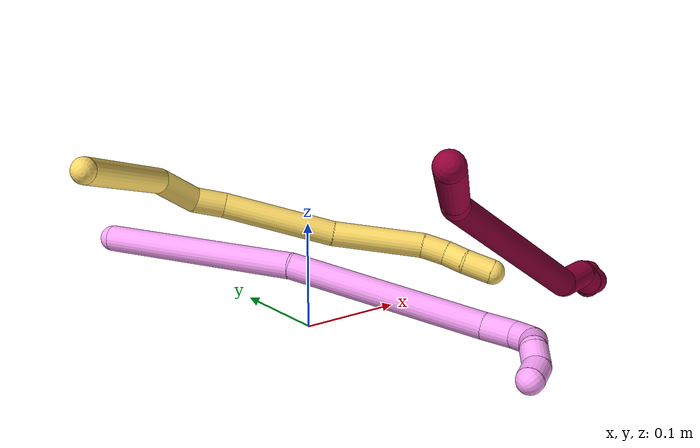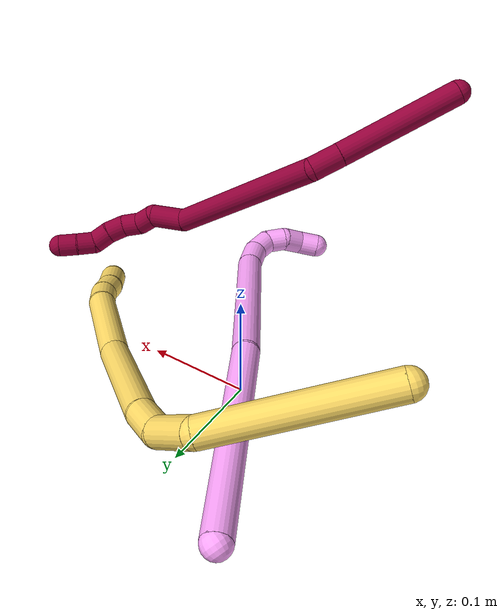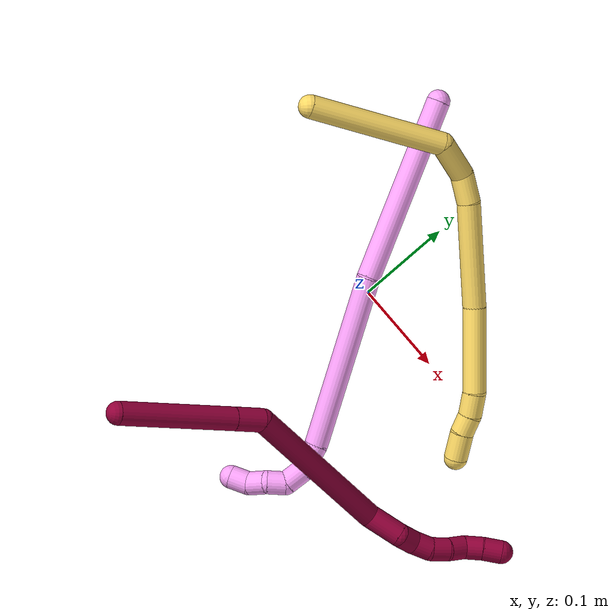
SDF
<sdf version="1.7">
 <world name="default">
  <model name="photoneo_s_sensor">
   <static>1</static>
   <pose>0 0 2 1.57079 1.57079 3.14159</pose>
   <link name="link">
    <inertial><mass>0.1</mass></inertial>
    <sensor name="sensor" type="depth">
     <update_rate>30</update_rate>
     <camera>
      <horizontal_fov>1.22</horizontal_fov>
      <image><width>1920</width><height>1200</height><format>B8G8R8</format></image>
      <clip><near>0.1</near><far>4</far></clip>
      <depth_camera><output>points</output></depth_camera>
     </camera>
     <plugin name="camera_plugin" filename="libgazebo_ros_depth_camera.so">
      <baseline>0.2</baseline>
      <alwaysOn>1</alwaysOn>
      <updateRate>0.0</updateRate>
      <cameraName>camera_ir</cameraName>
      <imageTopicName>/camera/color/image_raw</imageTopicName>
      <cameraInfoTopicName>/camera/color/camera_info</cameraInfoTopicName>
      <depthImageTopicName>/camera/depth/image_raw</depthImageTopicName>
      <depthImageCameraInfoTopicName>/camera/depth/camera_info</depthImageCameraInfoTopicName>
      <pointCloudTopicName>/camera/depth/points</pointCloudTopicName>
      <frameName>fr_optical</frameName>
      <pointCloudCutoff>0.1</pointCloudCutoff>
      <pointCloudCutoffMax>2.0</pointCloudCutoffMax>
      <distortionK1>0</distortionK1>
      <distortionK2>0</distortionK2>
      <distortionK3>0</distortionK3>
      <distortionT1>0</distortionT1>
      <distortionT2>0</distortionT2>
      <CxPrime>0</CxPrime>
      <Cx>0</Cx>
      <Cy>0</Cy>
      <focalLength>0</focalLength>
      <hackBaseline>0</hackBaseline>
     </plugin>
    </sensor>
   </link>
  </model>
  <model name="bin">
   <static>1</static>
   <link name="bottom">
    <collision name="collision-bottom">
     <pose>0 0 -0.01 0 -0 0</pose>
     <geometry><box><size>0.8 0.6 0.02</size></box></geometry>
     <surface>
      <friction><ode><mu>100</mu><mu2>100</mu2></ode></friction>
      <contact><collide_bitmask>65535</collide_bitmask></contact>
     </surface>
    </collision>
   </link>
   <link name="west_wall">
    <collision name="collision-west_wall">
     <pose>-0.41 0 0.1 0 -0 0</pose>
     <geometry><box><size>0.02 0.6 0.2</size></box></geometry>
     <surface>
      <friction><ode><mu>100</mu><mu2>100</mu2></ode></friction>
      <contact><collide_bitmask>65535</collide_bitmask></contact>
     </surface>
    </collision>
   </link>
   <link name="east_wall">
    <collision name="collision-east_wall">
     <pose>0.41 0 0.1 0 -0 0</pose>
     <geometry><box><size>0.02 0.6 0.2</size></box></geometry>
     <surface>
      <friction><ode><mu>100</mu><mu2>100</mu2></ode></friction>
      <contact><collide_bitmask>65535</collide_bitmask></contact>
     </surface>
    </collision>
   </link>
   <link name="south_wall">
    <collision name="collision-south_wall">
     <pose>0 -0.31 0.1 0 -0 0</pose>
     <geometry><box><size>0.8 0.02 0.2</size></box></geometry>
     <surface>
      <friction><ode><mu>100</mu><mu2>100</mu2></ode></friction>
      <contact><collide_bitmask>65535</collide_bitmask></contact>
     </surface>
    </collision>
   </link>
   <link name="north_wall">
    <collision name="collision-north_wall">
     <pose>0 0.31 0.1 0 -0 0</pose>
     <geometry><box><size>0.8 0.02 0.2</size></box></geometry>
     <surface>
      <friction><ode><mu>100</mu><mu2>100</mu2></ode></friction>
      <contact><collide_bitmask>65535</collide_bitmask></contact>
     </surface>
    </collision>
   </link>
  </model>
  <model name="4">
   <static>0</static>
   <link name="4">
    <collision name="collision-cylinder-e_1_1_4">
     <pose>0.025347 -0.076349 0.057695 0.923673 0.258924 0.129421</pose>
     <geometry><cylinder><radius>0.0125</radius><length>0.197992</length></cylinder></geometry>
     <surface>
      <friction><ode><mu>1.16</mu><mu2>1.16</mu2><slip1>0</slip1><slip2>0</slip2></ode></friction>
      <contact><ode><kp>1e+06</kp><kd>1</kd><max_vel>0</max_vel><min_depth>0.001</min_depth></ode></contact>
     </surface>
    </collision>
    <visual name="visual-cylinder-e_1_1_4">
     <pose>0.025347 -0.076349 0.057695 0.923673 0.258924 0.129421</pose>
     <geometry><cylinder><radius>0.0125</radius><length>0.197992</length></cylinder></geometry>
     <material><ambient>1 0.65098 0.996078 1</ambient></material>
    </visual>
    <collision name="collision-cylinder-e_2_4_5">
     <pose>0.091392 -0.221099 0.164892 0.94434 0.449143 0.232262</pose>
     <geometry><cylinder><radius>0.0125</radius><length>0.187463</length></cylinder></geometry>
     <surface>
      <friction><ode><mu>1.16</mu><mu2>1.16</mu2><slip1>0</slip1><slip2>0</slip2></ode></friction>
      <contact><ode><kp>1e+06</kp><kd>1</kd><max_vel>0</max_vel><min_depth>0.001</min_depth></ode></contact>
     </surface>
    </collision>
    <visual name="visual-cylinder-e_2_4_5">
     <pose>0.091392 -0.221099 0.164892 0.94434 0.449143 0.232262</pose>
     <geometry><cylinder><radius>0.0125</radius><length>0.187463</length></cylinder></geometry>
     <material><ambient>1 0.65098 0.996078 1</ambient></material>
    </visual>
    <collision name="collision-cylinder-e_3_5_6">
     <pose>0.136168 -0.302431 0.221766 1.05266 0.267431 0.155992</pose>
     <geometry><cylinder><radius>0.0125</radius><length>0.030865</length></cylinder></geometry>
     <surface>
      <friction><ode><mu>1.16</mu><mu2>1.16</mu2><slip1>0</slip1><slip2>0</slip2></ode></friction>
      <contact><ode><kp>1e+06</kp><kd>1</kd><max_vel>0</max_vel><min_depth>0.001</min_depth></ode></contact>
     </surface>
    </collision>
    <visual name="visual-cylinder-e_3_5_6">
     <pose>0.136168 -0.302431 0.221766 1.05266 0.267431 0.155992</pose>
     <geometry><cylinder><radius>0.0125</radius><length>0.030865</length></cylinder></geometry>
     <material><ambient>1 0.65098 0.996078 1</ambient></material>
    </visual>
    <collision name="collision-cylinder-e_4_6_7">
     <pose>0.139415 -0.326246 0.231461 1.36048 -0.074534 -0.060312</pose>
     <geometry><cylinder><radius>0.0125</radius><length>0.022323</length></cylinder></geometry>
     <surface>
      <friction><ode><mu>1.16</mu><mu2>1.16</mu2><slip1>0</slip1><slip2>0</slip2></ode></friction>
      <contact><ode><kp>1e+06</kp><kd>1</kd><max_vel>0</max_vel><min_depth>0.001</min_depth></ode></contact>
     </surface>
    </collision>
    <visual name="visual-cylinder-e_4_6_7">
     <pose>0.139415 -0.326246 0.231461 1.36048 -0.074534 -0.060312</pose>
     <geometry><cylinder><radius>0.0125</radius><length>0.022323</length></cylinder></geometry>
     <material><ambient>1 0.65098 0.996078 1</ambient></material>
    </visual>
    <collision name="collision-cylinder-e_5_7_8">
     <pose>0.134552 -0.345566 0.22985 2.00728 -0.408737 -0.629168</pose>
     <geometry><cylinder><radius>0.0125</radius><length>0.020286</length></cylinder></geometry>
     <surface>
      <friction><ode><mu>1.16</mu><mu2>1.16</mu2><slip1>0</slip1><slip2>0</slip2></ode></friction>
      <contact><ode><kp>1e+06</kp><kd>1</kd><max_vel>0</max_vel><min_depth>0.001</min_depth></ode></contact>
     </surface>
    </collision>
    <visual name="visual-cylinder-e_5_7_8">
     <pose>0.134552 -0.345566 0.22985 2.00728 -0.408737 -0.629168</pose>
     <geometry><cylinder><radius>0.0125</radius><length>0.020286</length></cylinder></geometry>
     <material><ambient>1 0.65098 0.996078 1</ambient></material>
    </visual>
    <collision name="collision-cylinder-e_6_8_9">
     <pose>0.131345 -0.362984 0.220931 2.07735 0.080102 0.135912</pose>
     <geometry><cylinder><radius>0.0125</radius><length>0.020612</length></cylinder></geometry>
     <surface>
      <friction><ode><mu>1.16</mu><mu2>1.16</mu2><slip1>0</slip1><slip2>0</slip2></ode></friction>
      <contact><ode><kp>1e+06</kp><kd>1</kd><max_vel>0</max_vel><min_depth>0.001</min_depth></ode></contact>
     </surface>
    </collision>
    <visual name="visual-cylinder-e_6_8_9">
     <pose>0.131345 -0.362984 0.220931 2.07735 0.080102 0.135912</pose>
     <geometry><cylinder><radius>0.0125</radius><length>0.020612</length></cylinder></geometry>
     <material><ambient>1 0.65098 0.996078 1</ambient></material>
    </visual>
    <collision name="collision-cylinder-e_7_9_2">
     <pose>0.129298 -0.378761 0.208859 2.37737 -0.284602 -0.684927</pose>
     <geometry><cylinder><radius>0.0125</radius><length>0.020459</length></cylinder></geometry>
     <surface>
      <friction><ode><mu>1.16</mu><mu2>1.16</mu2><slip1>0</slip1><slip2>0</slip2></ode></friction>
      <contact><ode><kp>1e+06</kp><kd>1</kd><max_vel>0</max_vel><min_depth>0.001</min_depth></ode></contact>
     </surface>
    </collision>
    <visual name="visual-cylinder-e_7_9_2">
     <pose>0.129298 -0.378761 0.208859 2.37737 -0.284602 -0.684927</pose>
     <geometry><cylinder><radius>0.0125</radius><length>0.020459</length></cylinder></geometry>
     <material><ambient>1 0.65098 0.996078 1</ambient></material>
    </visual>
    <collision name="collision-sphere-2">
     <pose>0.126426 -0.385554 0.201772 0 -0 0</pose>
     <geometry><sphere><radius>0.0125</radius></sphere></geometry>
     <surface>
      <friction><ode><mu>1.16</mu><mu2>1.16</mu2><slip1>0</slip1><slip2>0</slip2></ode></friction>
      <contact><ode><kp>1e+06</kp><kd>1</kd><max_vel>0</max_vel><min_depth>0.001</min_depth></ode></contact>
     </surface>
    </collision>
    <visual name="visual-sphere-2">
     <pose>0.126426 -0.385554 0.201772 0 -0 0</pose>
     <geometry><sphere><radius>0.0125</radius></sphere></geometry>
     <material><ambient>1 0.65098 0.996078 1</ambient></material>
    </visual>
    <collision name="collision-sphere-9">
     <pose>0.13217 -0.371967 0.215947 0 -0 0</pose>
     <geometry><sphere><radius>0.0125</radius></sphere></geometry>
     <surface>
      <friction><ode><mu>1.16</mu><mu2>1.16</mu2><slip1>0</slip1><slip2>0</slip2></ode></friction>
      <contact><ode><kp>1e+06</kp><kd>1</kd><max_vel>0</max_vel><min_depth>0.001</min_depth></ode></contact>
     </surface>
    </collision>
    <visual name="visual-sphere-9">
     <pose>0.13217 -0.371967 0.215947 0 -0 0</pose>
     <geometry><sphere><radius>0.0125</radius></sphere></geometry>
     <material><ambient>1 0.65098 0.996078 1</ambient></material>
    </visual>
    <collision name="collision-sphere-4">
     <pose>0.050694 -0.152697 0.115389 0 -0 0</pose>
     <geometry><sphere><radius>0.0125</radius></sphere></geometry>
     <surface>
      <friction><ode><mu>1.16</mu><mu2>1.16</mu2><slip1>0</slip1><slip2>0</slip2></ode></friction>
      <contact><ode><kp>1e+06</kp><kd>1</kd><max_vel>0</max_vel><min_depth>0.001</min_depth></ode></contact>
     </surface>
    </collision>
    <visual name="visual-sphere-4">
     <pose>0.050694 -0.152697 0.115389 0 -0 0</pose>
     <geometry><sphere><radius>0.0125</radius></sphere></geometry>
     <material><ambient>1 0.65098 0.996078 1</ambient></material>
    </visual>
    <collision name="collision-sphere-1">
     <geometry><sphere><radius>0.0125</radius></sphere></geometry>
     <surface>
      <friction><ode><mu>1.16</mu><mu2>1.16</mu2><slip1>0</slip1><slip2>0</slip2></ode></friction>
      <contact><ode><kp>1e+06</kp><kd>1</kd><max_vel>0</max_vel><min_depth>0.001</min_depth></ode></contact>
     </surface>
    </collision>
    <visual name="visual-sphere-1">
     <geometry><sphere><radius>0.0125</radius></sphere></geometry>
     <material><ambient>1 0.65098 0.996078 1</ambient></material>
    </visual>
    <collision name="collision-sphere-8">
     <pose>0.130521 -0.354001 0.225915 0 -0 0</pose>
     <geometry><sphere><radius>0.0125</radius></sphere></geometry>
     <surface>
      <friction><ode><mu>1.16</mu><mu2>1.16</mu2><slip1>0</slip1><slip2>0</slip2></ode></friction>
      <contact><ode><kp>1e+06</kp><kd>1</kd><max_vel>0</max_vel><min_depth>0.001</min_depth></ode></contact>
     </surface>
    </collision>
    <visual name="visual-sphere-8">
     <pose>0.130521 -0.354001 0.225915 0 -0 0</pose>
     <geometry><sphere><radius>0.0125</radius></sphere></geometry>
     <material><ambient>1 0.65098 0.996078 1</ambient></material>
    </visual>
    <collision name="collision-sphere-5">
     <pose>0.13209 -0.289501 0.214395 0 -0 0</pose>
     <geometry><sphere><radius>0.0125</radius></sphere></geometry>
     <surface>
      <friction><ode><mu>1.16</mu><mu2>1.16</mu2><slip1>0</slip1><slip2>0</slip2></ode></friction>
      <contact><ode><kp>1e+06</kp><kd>1</kd><max_vel>0</max_vel><min_depth>0.001</min_depth></ode></contact>
     </surface>
    </collision>
    <visual name="visual-sphere-5">
     <pose>0.13209 -0.289501 0.214395 0 -0 0</pose>
     <geometry><sphere><radius>0.0125</radius></sphere></geometry>
     <material><ambient>1 0.65098 0.996078 1</ambient></material>
    </visual>
    <collision name="collision-sphere-6">
     <pose>0.140246 -0.315361 0.229137 0 -0 0</pose>
     <geometry><sphere><radius>0.0125</radius></sphere></geometry>
     <surface>
      <friction><ode><mu>1.16</mu><mu2>1.16</mu2><slip1>0</slip1><slip2>0</slip2></ode></friction>
      <contact><ode><kp>1e+06</kp><kd>1</kd><max_vel>0</max_vel><min_depth>0.001</min_depth></ode></contact>
     </surface>
    </collision>
    <visual name="visual-sphere-6">
     <pose>0.140246 -0.315361 0.229137 0 -0 0</pose>
     <geometry><sphere><radius>0.0125</radius></sphere></geometry>
     <material><ambient>1 0.65098 0.996078 1</ambient></material>
    </visual>
    <collision name="collision-sphere-7">
     <pose>0.138584 -0.337131 0.233785 0 -0 0</pose>
     <geometry><sphere><radius>0.0125</radius></sphere></geometry>
     <surface>
      <friction><ode><mu>1.16</mu><mu2>1.16</mu2><slip1>0</slip1><slip2>0</slip2></ode></friction>
      <contact><ode><kp>1e+06</kp><kd>1</kd><max_vel>0</max_vel><min_depth>0.001</min_depth></ode></contact>
     </surface>
    </collision>
    <visual name="visual-sphere-7">
     <pose>0.138584 -0.337131 0.233785 0 -0 0</pose>
     <geometry><sphere><radius>0.0125</radius></sphere></geometry>
     <material><ambient>1 0.65098 0.996078 1</ambient></material>
    </visual>
    <inertial>
     <pose>0.075096 -0.190845 0.135671 0 -0 0</pose>
     <mass>0.5</mass>
     <inertia>
      <ixx>0.00133</ixx>
      <ixy>0</ixy>
      <ixz>0</ixz>
      <iyy>0.000938</iyy>
      <iyz>0</iyz>
      <izz>0.000526</izz>
     </inertia>
    </inertial>
   </link>
   <pose>-0.103914 0.185163 0.060291 0.221018 1.01519 -0.010257</pose>
  </model>
  <model name="5">
   <static>0</static>
   <link name="5">
    <collision name="collision-cylinder-e_1_1_4">
     <pose>0.026933 0.001109 0.068551 -0.016182 0.374317 -0.003065</pose>
     <geometry><cylinder><radius>0.0125</radius><length>0.147321</length></cylinder></geometry>
     <surface>
      <friction><ode><mu>1.16</mu><mu2>1.16</mu2><slip1>0</slip1><slip2>0</slip2></ode></friction>
      <contact><ode><kp>1e+06</kp><kd>1</kd><max_vel>0</max_vel><min_depth>0.001</min_depth></ode></contact>
     </surface>
    </collision>
    <visual name="visual-cylinder-e_1_1_4">
     <pose>0.026933 0.001109 0.068551 -0.016182 0.374317 -0.003065</pose>
     <geometry><cylinder><radius>0.0125</radius><length>0.147321</length></cylinder></geometry>
     <material><ambient>1 0.858824 0.4 1</ambient></material>
    </visual>
    <collision name="collision-cylinder-e_2_4_5">
     <pose>0.073186 0.003544 0.147608 -0.125513 1.06939 -0.074398</pose>
     <geometry><cylinder><radius>0.0125</radius><length>0.044063</length></cylinder></geometry>
     <surface>
      <friction><ode><mu>1.16</mu><mu2>1.16</mu2><slip1>0</slip1><slip2>0</slip2></ode></friction>
      <contact><ode><kp>1e+06</kp><kd>1</kd><max_vel>0</max_vel><min_depth>0.001</min_depth></ode></contact>
     </surface>
    </collision>
    <visual name="visual-cylinder-e_2_4_5">
     <pose>0.073186 0.003544 0.147608 -0.125513 1.06939 -0.074398</pose>
     <geometry><cylinder><radius>0.0125</radius><length>0.044063</length></cylinder></geometry>
     <material><ambient>1 0.858824 0.4 1</ambient></material>
    </visual>
    <collision name="collision-cylinder-e_3_5_6">
     <pose>0.106782 7.9e-05 0.16116 1.00463 1.19233 0.713543</pose>
     <geometry><cylinder><radius>0.0125</radius><length>0.030729</length></cylinder></geometry>
     <surface>
      <friction><ode><mu>1.16</mu><mu2>1.16</mu2><slip1>0</slip1><slip2>0</slip2></ode></friction>
      <contact><ode><kp>1e+06</kp><kd>1</kd><max_vel>0</max_vel><min_depth>0.001</min_depth></ode></contact>
     </surface>
    </collision>
    <visual name="visual-cylinder-e_3_5_6">
     <pose>0.106782 7.9e-05 0.16116 1.00463 1.19233 0.713543</pose>
     <geometry><cylinder><radius>0.0125</radius><length>0.030729</length></cylinder></geometry>
     <material><ambient>1 0.858824 0.4 1</ambient></material>
    </visual>
    <collision name="collision-cylinder-e_4_6_7">
     <pose>0.17513 -0.020106 0.16565 1.47718 1.29228 1.20341</pose>
     <geometry><cylinder><radius>0.0125</radius><length>0.112476</length></cylinder></geometry>
     <surface>
      <friction><ode><mu>1.16</mu><mu2>1.16</mu2><slip1>0</slip1><slip2>0</slip2></ode></friction>
      <contact><ode><kp>1e+06</kp><kd>1</kd><max_vel>0</max_vel><min_depth>0.001</min_depth></ode></contact>
     </surface>
    </collision>
    <visual name="visual-cylinder-e_4_6_7">
     <pose>0.17513 -0.020106 0.16565 1.47718 1.29228 1.20341</pose>
     <geometry><cylinder><radius>0.0125</radius><length>0.112476</length></cylinder></geometry>
     <material><ambient>1 0.858824 0.4 1</ambient></material>
    </visual>
    <collision name="collision-cylinder-e_5_7_8">
     <pose>0.270407 -0.053818 0.164914 1.68934 1.14986 1.26076</pose>
     <geometry><cylinder><radius>0.0125</radius><length>0.090294</length></cylinder></geometry>
     <surface>
      <friction><ode><mu>1.16</mu><mu2>1.16</mu2><slip1>0</slip1><slip2>0</slip2></ode></friction>
      <contact><ode><kp>1e+06</kp><kd>1</kd><max_vel>0</max_vel><min_depth>0.001</min_depth></ode></contact>
     </surface>
    </collision>
    <visual name="visual-cylinder-e_5_7_8">
     <pose>0.270407 -0.053818 0.164914 1.68934 1.14986 1.26076</pose>
     <geometry><cylinder><radius>0.0125</radius><length>0.090294</length></cylinder></geometry>
     <material><ambient>1 0.858824 0.4 1</ambient></material>
    </visual>
    <collision name="collision-cylinder-e_6_8_9">
     <pose>0.323563 -0.075235 0.160115 2.27215 1.24353 1.99165</pose>
     <geometry><cylinder><radius>0.0125</radius><length>0.025239</length></cylinder></geometry>
     <surface>
      <friction><ode><mu>1.16</mu><mu2>1.16</mu2><slip1>0</slip1><slip2>0</slip2></ode></friction>
      <contact><ode><kp>1e+06</kp><kd>1</kd><max_vel>0</max_vel><min_depth>0.001</min_depth></ode></contact>
     </surface>
    </collision>
    <visual name="visual-cylinder-e_6_8_9">
     <pose>0.323563 -0.075235 0.160115 2.27215 1.24353 1.99165</pose>
     <geometry><cylinder><radius>0.0125</radius><length>0.025239</length></cylinder></geometry>
     <material><ambient>1 0.858824 0.4 1</ambient></material>
    </visual>
    <collision name="collision-cylinder-e_7_9_10">
     <pose>0.34485 -0.080076 0.15312 2.76282 1.10349 2.53779</pose>
     <geometry><cylinder><radius>0.0125</radius><length>0.020917</length></cylinder></geometry>
     <surface>
      <friction><ode><mu>1.16</mu><mu2>1.16</mu2><slip1>0</slip1><slip2>0</slip2></ode></friction>
      <contact><ode><kp>1e+06</kp><kd>1</kd><max_vel>0</max_vel><min_depth>0.001</min_depth></ode></contact>
     </surface>
    </collision>
    <visual name="visual-cylinder-e_7_9_10">
     <pose>0.34485 -0.080076 0.15312 2.76282 1.10349 2.53779</pose>
     <geometry><cylinder><radius>0.0125</radius><length>0.020917</length></cylinder></geometry>
     <material><ambient>1 0.858824 0.4 1</ambient></material>
    </visual>
    <collision name="collision-cylinder-e_8_10_2">
     <pose>0.367877 -0.084843 0.145117 2.44629 1.23876 2.20113</pose>
     <geometry><cylinder><radius>0.0125</radius><length>0.028961</length></cylinder></geometry>
     <surface>
      <friction><ode><mu>1.16</mu><mu2>1.16</mu2><slip1>0</slip1><slip2>0</slip2></ode></friction>
      <contact><ode><kp>1e+06</kp><kd>1</kd><max_vel>0</max_vel><min_depth>0.001</min_depth></ode></contact>
     </surface>
    </collision>
    <visual name="visual-cylinder-e_8_10_2">
     <pose>0.367877 -0.084843 0.145117 2.44629 1.23876 2.20113</pose>
     <geometry><cylinder><radius>0.0125</radius><length>0.028961</length></cylinder></geometry>
     <material><ambient>1 0.858824 0.4 1</ambient></material>
    </visual>
    <collision name="collision-sphere-2">
     <pose>0.381566 -0.087866 0.141493 0 -0 0</pose>
     <geometry><sphere><radius>0.0125</radius></sphere></geometry>
     <surface>
      <friction><ode><mu>1.16</mu><mu2>1.16</mu2><slip1>0</slip1><slip2>0</slip2></ode></friction>
      <contact><ode><kp>1e+06</kp><kd>1</kd><max_vel>0</max_vel><min_depth>0.001</min_depth></ode></contact>
     </surface>
    </collision>
    <visual name="visual-sphere-2">
     <pose>0.381566 -0.087866 0.141493 0 -0 0</pose>
     <geometry><sphere><radius>0.0125</radius></sphere></geometry>
     <material><ambient>1 0.858824 0.4 1</ambient></material>
    </visual>
    <collision name="collision-sphere-10">
     <pose>0.354187 -0.081819 0.148742 0 -0 0</pose>
     <geometry><sphere><radius>0.0125</radius></sphere></geometry>
     <surface>
      <friction><ode><mu>1.16</mu><mu2>1.16</mu2><slip1>0</slip1><slip2>0</slip2></ode></friction>
      <contact><ode><kp>1e+06</kp><kd>1</kd><max_vel>0</max_vel><min_depth>0.001</min_depth></ode></contact>
     </surface>
    </collision>
    <visual name="visual-sphere-10">
     <pose>0.354187 -0.081819 0.148742 0 -0 0</pose>
     <geometry><sphere><radius>0.0125</radius></sphere></geometry>
     <material><ambient>1 0.858824 0.4 1</ambient></material>
    </visual>
    <collision name="collision-sphere-9">
     <pose>0.335512 -0.078334 0.157497 0 -0 0</pose>
     <geometry><sphere><radius>0.0125</radius></sphere></geometry>
     <surface>
      <friction><ode><mu>1.16</mu><mu2>1.16</mu2><slip1>0</slip1><slip2>0</slip2></ode></friction>
      <contact><ode><kp>1e+06</kp><kd>1</kd><max_vel>0</max_vel><min_depth>0.001</min_depth></ode></contact>
     </surface>
    </collision>
    <visual name="visual-sphere-9">
     <pose>0.335512 -0.078334 0.157497 0 -0 0</pose>
     <geometry><sphere><radius>0.0125</radius></sphere></geometry>
     <material><ambient>1 0.858824 0.4 1</ambient></material>
    </visual>
    <collision name="collision-sphere-4">
     <pose>0.053866 0.002219 0.137102 0 -0 0</pose>
     <geometry><sphere><radius>0.0125</radius></sphere></geometry>
     <surface>
      <friction><ode><mu>1.16</mu><mu2>1.16</mu2><slip1>0</slip1><slip2>0</slip2></ode></friction>
      <contact><ode><kp>1e+06</kp><kd>1</kd><max_vel>0</max_vel><min_depth>0.001</min_depth></ode></contact>
     </surface>
    </collision>
    <visual name="visual-sphere-4">
     <pose>0.053866 0.002219 0.137102 0 -0 0</pose>
     <geometry><sphere><radius>0.0125</radius></sphere></geometry>
     <material><ambient>1 0.858824 0.4 1</ambient></material>
    </visual>
    <collision name="collision-sphere-1">
     <geometry><sphere><radius>0.0125</radius></sphere></geometry>
     <surface>
      <friction><ode><mu>1.16</mu><mu2>1.16</mu2><slip1>0</slip1><slip2>0</slip2></ode></friction>
      <contact><ode><kp>1e+06</kp><kd>1</kd><max_vel>0</max_vel><min_depth>0.001</min_depth></ode></contact>
     </surface>
    </collision>
    <visual name="visual-sphere-1">
     <geometry><sphere><radius>0.0125</radius></sphere></geometry>
     <material><ambient>1 0.858824 0.4 1</ambient></material>
    </visual>
    <collision name="collision-sphere-8">
     <pose>0.311613 -0.072136 0.162732 0 -0 0</pose>
     <geometry><sphere><radius>0.0125</radius></sphere></geometry>
     <surface>
      <friction><ode><mu>1.16</mu><mu2>1.16</mu2><slip1>0</slip1><slip2>0</slip2></ode></friction>
      <contact><ode><kp>1e+06</kp><kd>1</kd><max_vel>0</max_vel><min_depth>0.001</min_depth></ode></contact>
     </surface>
    </collision>
    <visual name="visual-sphere-8">
     <pose>0.311613 -0.072136 0.162732 0 -0 0</pose>
     <geometry><sphere><radius>0.0125</radius></sphere></geometry>
     <material><ambient>1 0.858824 0.4 1</ambient></material>
    </visual>
    <collision name="collision-sphere-5">
     <pose>0.092505 0.00487 0.158115 0 -0 0</pose>
     <geometry><sphere><radius>0.0125</radius></sphere></geometry>
     <surface>
      <friction><ode><mu>1.16</mu><mu2>1.16</mu2><slip1>0</slip1><slip2>0</slip2></ode></friction>
      <contact><ode><kp>1e+06</kp><kd>1</kd><max_vel>0</max_vel><min_depth>0.001</min_depth></ode></contact>
     </surface>
    </collision>
    <visual name="visual-sphere-5">
     <pose>0.092505 0.00487 0.158115 0 -0 0</pose>
     <geometry><sphere><radius>0.0125</radius></sphere></geometry>
     <material><ambient>1 0.858824 0.4 1</ambient></material>
    </visual>
    <collision name="collision-sphere-6">
     <pose>0.12106 -0.004712 0.164205 0 -0 0</pose>
     <geometry><sphere><radius>0.0125</radius></sphere></geometry>
     <surface>
      <friction><ode><mu>1.16</mu><mu2>1.16</mu2><slip1>0</slip1><slip2>0</slip2></ode></friction>
      <contact><ode><kp>1e+06</kp><kd>1</kd><max_vel>0</max_vel><min_depth>0.001</min_depth></ode></contact>
     </surface>
    </collision>
    <visual name="visual-sphere-6">
     <pose>0.12106 -0.004712 0.164205 0 -0 0</pose>
     <geometry><sphere><radius>0.0125</radius></sphere></geometry>
     <material><ambient>1 0.858824 0.4 1</ambient></material>
    </visual>
    <collision name="collision-sphere-7">
     <pose>0.229201 -0.035499 0.167096 0 -0 0</pose>
     <geometry><sphere><radius>0.0125</radius></sphere></geometry>
     <surface>
      <friction><ode><mu>1.16</mu><mu2>1.16</mu2><slip1>0</slip1><slip2>0</slip2></ode></friction>
      <contact><ode><kp>1e+06</kp><kd>1</kd><max_vel>0</max_vel><min_depth>0.001</min_depth></ode></contact>
     </surface>
    </collision>
    <visual name="visual-sphere-7">
     <pose>0.229201 -0.035499 0.167096 0 -0 0</pose>
     <geometry><sphere><radius>0.0125</radius></sphere></geometry>
     <material><ambient>1 0.858824 0.4 1</ambient></material>
    </visual>
    <inertial>
     <pose>0.161244 -0.02566 0.133049 0 -0 0</pose>
     <mass>0.5</mass>
     <inertia>
      <ixx>0.000366</ixx>
      <ixy>0</ixy>
      <ixz>0</ixz>
      <iyy>0.00051</iyy>
      <iyz>0</iyz>
      <izz>-0.000226</izz>
     </inertia>
    </inertial>
   </link>
   <pose>-0.18267 0.076684 0.161582 -1.68526 0.538202 -0.702655</pose>
  </model>
  <model name="8">
   <static>0</static>
   <link name="8">
    <collision name="collision-cylinder-e_1_1_4">
     <pose>4.4e-05 0.002901 -0.063894 -3.09622 0.00069 -0.030401</pose>
     <geometry><cylinder><radius>0.0125</radius><length>0.127921</length></cylinder></geometry>
     <surface>
      <friction><ode><mu>1.16</mu><mu2>1.16</mu2><slip1>0</slip1><slip2>0</slip2></ode></friction>
      <contact><ode><kp>1e+06</kp><kd>1</kd><max_vel>0</max_vel><min_depth>0.001</min_depth></ode></contact>
     </surface>
    </collision>
    <visual name="visual-cylinder-e_1_1_4">
     <pose>4.4e-05 0.002901 -0.063894 -3.09622 0.00069 -0.030401</pose>
     <geometry><cylinder><radius>0.0125</radius><length>0.127921</length></cylinder></geometry>
     <material><ambient>0.584314 0 0.227451 1</ambient></material>
    </visual>
    <collision name="collision-cylinder-e_2_4_5">
     <pose>7e-06 0.006684 -0.143528 -3.08558 -0.005155 0.183487</pose>
     <geometry><cylinder><radius>0.0125</radius><length>0.031527</length></cylinder></geometry>
     <surface>
      <friction><ode><mu>1.16</mu><mu2>1.16</mu2><slip1>0</slip1><slip2>0</slip2></ode></friction>
      <contact><ode><kp>1e+06</kp><kd>1</kd><max_vel>0</max_vel><min_depth>0.001</min_depth></ode></contact>
     </surface>
    </collision>
    <visual name="visual-cylinder-e_2_4_5">
     <pose>7e-06 0.006684 -0.143528 -3.08558 -0.005155 0.183487</pose>
     <geometry><cylinder><radius>0.0125</radius><length>0.031527</length></cylinder></geometry>
     <material><ambient>0.584314 0 0.227451 1</ambient></material>
    </visual>
    <collision name="collision-cylinder-e_3_5_6">
     <pose>0.047113 0.03343 -0.232624 -2.80264 0.545292 -2.04321</pose>
     <geometry><cylinder><radius>0.0125</radius><length>0.181954</length></cylinder></geometry>
     <surface>
      <friction><ode><mu>1.16</mu><mu2>1.16</mu2><slip1>0</slip1><slip2>0</slip2></ode></friction>
      <contact><ode><kp>1e+06</kp><kd>1</kd><max_vel>0</max_vel><min_depth>0.001</min_depth></ode></contact>
     </surface>
    </collision>
    <visual name="visual-cylinder-e_3_5_6">
     <pose>0.047113 0.03343 -0.232624 -2.80264 0.545292 -2.04321</pose>
     <geometry><cylinder><radius>0.0125</radius><length>0.181954</length></cylinder></geometry>
     <material><ambient>0.584314 0 0.227451 1</ambient></material>
    </visual>
    <collision name="collision-cylinder-e_4_6_7">
     <pose>0.095268 0.071308 -0.320324 -2.44429 0.051707 -0.14204</pose>
     <geometry><cylinder><radius>0.0125</radius><length>0.03747</length></cylinder></geometry>
     <surface>
      <friction><ode><mu>1.16</mu><mu2>1.16</mu2><slip1>0</slip1><slip2>0</slip2></ode></friction>
      <contact><ode><kp>1e+06</kp><kd>1</kd><max_vel>0</max_vel><min_depth>0.001</min_depth></ode></contact>
     </surface>
    </collision>
    <visual name="visual-cylinder-e_4_6_7">
     <pose>0.095268 0.071308 -0.320324 -2.44429 0.051707 -0.14204</pose>
     <geometry><cylinder><radius>0.0125</radius><length>0.03747</length></cylinder></geometry>
     <material><ambient>0.584314 0 0.227451 1</ambient></material>
    </visual>
    <collision name="collision-cylinder-e_5_7_8">
     <pose>0.100649 0.084813 -0.34409 -2.98471 0.433222 -2.45549</pose>
     <geometry><cylinder><radius>0.0125</radius><length>0.021021</length></cylinder></geometry>
     <surface>
      <friction><ode><mu>1.16</mu><mu2>1.16</mu2><slip1>0</slip1><slip2>0</slip2></ode></friction>
      <contact><ode><kp>1e+06</kp><kd>1</kd><max_vel>0</max_vel><min_depth>0.001</min_depth></ode></contact>
     </surface>
    </collision>
    <visual name="visual-cylinder-e_5_7_8">
     <pose>0.100649 0.084813 -0.34409 -2.98471 0.433222 -2.45549</pose>
     <geometry><cylinder><radius>0.0125</radius><length>0.021021</length></cylinder></geometry>
     <material><ambient>0.584314 0 0.227451 1</ambient></material>
    </visual>
    <collision name="collision-cylinder-e_6_8_9">
     <pose>0.105768 0.090301 -0.362666 -2.72981 0.070645 -0.335222</pose>
     <geometry><cylinder><radius>0.0125</radius><length>0.020028</length></cylinder></geometry>
     <surface>
      <friction><ode><mu>1.16</mu><mu2>1.16</mu2><slip1>0</slip1><slip2>0</slip2></ode></friction>
      <contact><ode><kp>1e+06</kp><kd>1</kd><max_vel>0</max_vel><min_depth>0.001</min_depth></ode></contact>
     </surface>
    </collision>
    <visual name="visual-cylinder-e_6_8_9">
     <pose>0.105768 0.090301 -0.362666 -2.72981 0.070645 -0.335222</pose>
     <geometry><cylinder><radius>0.0125</radius><length>0.020028</length></cylinder></geometry>
     <material><ambient>0.584314 0 0.227451 1</ambient></material>
    </visual>
    <collision name="collision-cylinder-e_7_9_10">
     <pose>0.105624 0.0953 -0.381741 -3.04106 -0.085065 1.40428</pose>
     <geometry><cylinder><radius>0.0125</radius><length>0.020016</length></cylinder></geometry>
     <surface>
      <friction><ode><mu>1.16</mu><mu2>1.16</mu2><slip1>0</slip1><slip2>0</slip2></ode></friction>
      <contact><ode><kp>1e+06</kp><kd>1</kd><max_vel>0</max_vel><min_depth>0.001</min_depth></ode></contact>
     </surface>
    </collision>
    <visual name="visual-cylinder-e_7_9_10">
     <pose>0.105624 0.0953 -0.381741 -3.04106 -0.085065 1.40428</pose>
     <geometry><cylinder><radius>0.0125</radius><length>0.020016</length></cylinder></geometry>
     <material><ambient>0.584314 0 0.227451 1</ambient></material>
    </visual>
    <collision name="collision-cylinder-e_8_10_11">
     <pose>0.104368 0.095267 -0.401607 3.03804 -0.040592 -0.746639</pose>
     <geometry><cylinder><radius>0.0125</radius><length>0.020012</length></cylinder></geometry>
     <surface>
      <friction><ode><mu>1.16</mu><mu2>1.16</mu2><slip1>0</slip1><slip2>0</slip2></ode></friction>
      <contact><ode><kp>1e+06</kp><kd>1</kd><max_vel>0</max_vel><min_depth>0.001</min_depth></ode></contact>
     </surface>
    </collision>
    <visual name="visual-cylinder-e_8_10_11">
     <pose>0.104368 0.095267 -0.401607 3.03804 -0.040592 -0.746639</pose>
     <geometry><cylinder><radius>0.0125</radius><length>0.020012</length></cylinder></geometry>
     <material><ambient>0.584314 0 0.227451 1</ambient></material>
    </visual>
    <collision name="collision-cylinder-e_9_11_12">
     <pose>0.100726 0.09761 -0.420405 -2.77723 -0.329054 1.467</pose>
     <geometry><cylinder><radius>0.0125</radius><length>0.020025</length></cylinder></geometry>
     <surface>
      <friction><ode><mu>1.16</mu><mu2>1.16</mu2><slip1>0</slip1><slip2>0</slip2></ode></friction>
      <contact><ode><kp>1e+06</kp><kd>1</kd><max_vel>0</max_vel><min_depth>0.001</min_depth></ode></contact>
     </surface>
    </collision>
    <visual name="visual-cylinder-e_9_11_12">
     <pose>0.100726 0.09761 -0.420405 -2.77723 -0.329054 1.467</pose>
     <geometry><cylinder><radius>0.0125</radius><length>0.020025</length></cylinder></geometry>
     <material><ambient>0.584314 0 0.227451 1</ambient></material>
    </visual>
    <collision name="collision-cylinder-e_10_12_2">
     <pose>0.095407 0.104899 -0.438236 -2.73061 -0.20966 0.934958</pose>
     <geometry><cylinder><radius>0.0125</radius><length>0.020025</length></cylinder></geometry>
     <surface>
      <friction><ode><mu>1.16</mu><mu2>1.16</mu2><slip1>0</slip1><slip2>0</slip2></ode></friction>
      <contact><ode><kp>1e+06</kp><kd>1</kd><max_vel>0</max_vel><min_depth>0.001</min_depth></ode></contact>
     </surface>
    </collision>
    <visual name="visual-cylinder-e_10_12_2">
     <pose>0.095407 0.104899 -0.438236 -2.73061 -0.20966 0.934958</pose>
     <geometry><cylinder><radius>0.0125</radius><length>0.020025</length></cylinder></geometry>
     <material><ambient>0.584314 0 0.227451 1</ambient></material>
    </visual>
    <collision name="collision-sphere-2">
     <pose>0.093323 0.108812 -0.447214 0 -0 0</pose>
     <geometry><sphere><radius>0.0125</radius></sphere></geometry>
     <surface>
      <friction><ode><mu>1.16</mu><mu2>1.16</mu2><slip1>0</slip1><slip2>0</slip2></ode></friction>
      <contact><ode><kp>1e+06</kp><kd>1</kd><max_vel>0</max_vel><min_depth>0.001</min_depth></ode></contact>
     </surface>
    </collision>
    <visual name="visual-sphere-2">
     <pose>0.093323 0.108812 -0.447214 0 -0 0</pose>
     <geometry><sphere><radius>0.0125</radius></sphere></geometry>
     <material><ambient>0.584314 0 0.227451 1</ambient></material>
    </visual>
    <collision name="collision-sphere-12">
     <pose>0.097491 0.100987 -0.429258 0 -0 0</pose>
     <geometry><sphere><radius>0.0125</radius></sphere></geometry>
     <surface>
      <friction><ode><mu>1.16</mu><mu2>1.16</mu2><slip1>0</slip1><slip2>0</slip2></ode></friction>
      <contact><ode><kp>1e+06</kp><kd>1</kd><max_vel>0</max_vel><min_depth>0.001</min_depth></ode></contact>
     </surface>
    </collision>
    <visual name="visual-sphere-12">
     <pose>0.097491 0.100987 -0.429258 0 -0 0</pose>
     <geometry><sphere><radius>0.0125</radius></sphere></geometry>
     <material><ambient>0.584314 0 0.227451 1</ambient></material>
    </visual>
    <collision name="collision-sphere-11">
     <pose>0.103962 0.094234 -0.411551 0 -0 0</pose>
     <geometry><sphere><radius>0.0125</radius></sphere></geometry>
     <surface>
      <friction><ode><mu>1.16</mu><mu2>1.16</mu2><slip1>0</slip1><slip2>0</slip2></ode></friction>
      <contact><ode><kp>1e+06</kp><kd>1</kd><max_vel>0</max_vel><min_depth>0.001</min_depth></ode></contact>
     </surface>
    </collision>
    <visual name="visual-sphere-11">
     <pose>0.103962 0.094234 -0.411551 0 -0 0</pose>
     <geometry><sphere><radius>0.0125</radius></sphere></geometry>
     <material><ambient>0.584314 0 0.227451 1</ambient></material>
    </visual>
    <collision name="collision-sphere-10">
     <pose>0.104774 0.096301 -0.391663 0 -0 0</pose>
     <geometry><sphere><radius>0.0125</radius></sphere></geometry>
     <surface>
      <friction><ode><mu>1.16</mu><mu2>1.16</mu2><slip1>0</slip1><slip2>0</slip2></ode></friction>
      <contact><ode><kp>1e+06</kp><kd>1</kd><max_vel>0</max_vel><min_depth>0.001</min_depth></ode></contact>
     </surface>
    </collision>
    <visual name="visual-sphere-10">
     <pose>0.104774 0.096301 -0.391663 0 -0 0</pose>
     <geometry><sphere><radius>0.0125</radius></sphere></geometry>
     <material><ambient>0.584314 0 0.227451 1</ambient></material>
    </visual>
    <collision name="collision-sphere-9">
     <pose>0.106475 0.094299 -0.37182 0 -0 0</pose>
     <geometry><sphere><radius>0.0125</radius></sphere></geometry>
     <surface>
      <friction><ode><mu>1.16</mu><mu2>1.16</mu2><slip1>0</slip1><slip2>0</slip2></ode></friction>
      <contact><ode><kp>1e+06</kp><kd>1</kd><max_vel>0</max_vel><min_depth>0.001</min_depth></ode></contact>
     </surface>
    </collision>
    <visual name="visual-sphere-9">
     <pose>0.106475 0.094299 -0.37182 0 -0 0</pose>
     <geometry><sphere><radius>0.0125</radius></sphere></geometry>
     <material><ambient>0.584314 0 0.227451 1</ambient></material>
    </visual>
    <collision name="collision-sphere-4">
     <pose>8.8e-05 0.005802 -0.127789 0 -0 0</pose>
     <geometry><sphere><radius>0.0125</radius></sphere></geometry>
     <surface>
      <friction><ode><mu>1.16</mu><mu2>1.16</mu2><slip1>0</slip1><slip2>0</slip2></ode></friction>
      <contact><ode><kp>1e+06</kp><kd>1</kd><max_vel>0</max_vel><min_depth>0.001</min_depth></ode></contact>
     </surface>
    </collision>
    <visual name="visual-sphere-4">
     <pose>8.8e-05 0.005802 -0.127789 0 -0 0</pose>
     <geometry><sphere><radius>0.0125</radius></sphere></geometry>
     <material><ambient>0.584314 0 0.227451 1</ambient></material>
    </visual>
    <collision name="collision-sphere-1">
     <geometry><sphere><radius>0.0125</radius></sphere></geometry>
     <surface>
      <friction><ode><mu>1.16</mu><mu2>1.16</mu2><slip1>0</slip1><slip2>0</slip2></ode></friction>
      <contact><ode><kp>1e+06</kp><kd>1</kd><max_vel>0</max_vel><min_depth>0.001</min_depth></ode></contact>
     </surface>
    </collision>
    <visual name="visual-sphere-1">
     <geometry><sphere><radius>0.0125</radius></sphere></geometry>
     <material><ambient>0.584314 0 0.227451 1</ambient></material>
    </visual>
    <collision name="collision-sphere-8">
     <pose>0.105061 0.086303 -0.353512 0 -0 0</pose>
     <geometry><sphere><radius>0.0125</radius></sphere></geometry>
     <surface>
      <friction><ode><mu>1.16</mu><mu2>1.16</mu2><slip1>0</slip1><slip2>0</slip2></ode></friction>
      <contact><ode><kp>1e+06</kp><kd>1</kd><max_vel>0</max_vel><min_depth>0.001</min_depth></ode></contact>
     </surface>
    </collision>
    <visual name="visual-sphere-8">
     <pose>0.105061 0.086303 -0.353512 0 -0 0</pose>
     <geometry><sphere><radius>0.0125</radius></sphere></geometry>
     <material><ambient>0.584314 0 0.227451 1</ambient></material>
    </visual>
    <collision name="collision-sphere-5">
     <pose>-7.4e-05 0.007567 -0.159266 0 -0 0</pose>
     <geometry><sphere><radius>0.0125</radius></sphere></geometry>
     <surface>
      <friction><ode><mu>1.16</mu><mu2>1.16</mu2><slip1>0</slip1><slip2>0</slip2></ode></friction>
      <contact><ode><kp>1e+06</kp><kd>1</kd><max_vel>0</max_vel><min_depth>0.001</min_depth></ode></contact>
     </surface>
    </collision>
    <visual name="visual-sphere-5">
     <pose>-7.4e-05 0.007567 -0.159266 0 -0 0</pose>
     <geometry><sphere><radius>0.0125</radius></sphere></geometry>
     <material><ambient>0.584314 0 0.227451 1</ambient></material>
    </visual>
    <collision name="collision-sphere-6">
     <pose>0.0943 0.059293 -0.305981 0 -0 0</pose>
     <geometry><sphere><radius>0.0125</radius></sphere></geometry>
     <surface>
      <friction><ode><mu>1.16</mu><mu2>1.16</mu2><slip1>0</slip1><slip2>0</slip2></ode></friction>
      <contact><ode><kp>1e+06</kp><kd>1</kd><max_vel>0</max_vel><min_depth>0.001</min_depth></ode></contact>
     </surface>
    </collision>
    <visual name="visual-sphere-6">
     <pose>0.0943 0.059293 -0.305981 0 -0 0</pose>
     <geometry><sphere><radius>0.0125</radius></sphere></geometry>
     <material><ambient>0.584314 0 0.227451 1</ambient></material>
    </visual>
    <collision name="collision-sphere-7">
     <pose>0.096236 0.083322 -0.334667 0 -0 0</pose>
     <geometry><sphere><radius>0.0125</radius></sphere></geometry>
     <surface>
      <friction><ode><mu>1.16</mu><mu2>1.16</mu2><slip1>0</slip1><slip2>0</slip2></ode></friction>
      <contact><ode><kp>1e+06</kp><kd>1</kd><max_vel>0</max_vel><min_depth>0.001</min_depth></ode></contact>
     </surface>
    </collision>
    <visual name="visual-sphere-7">
     <pose>0.096236 0.083322 -0.334667 0 -0 0</pose>
     <geometry><sphere><radius>0.0125</radius></sphere></geometry>
     <material><ambient>0.584314 0 0.227451 1</ambient></material>
    </visual>
    <inertial>
     <pose>0.049025 0.041594 -0.228794 0 -0 0</pose>
     <mass>0.5</mass>
     <inertia>
      <ixx>-0.000391</ixx>
      <ixy>0</ixy>
      <ixz>0</ixz>
      <iyy>-0.000276</iyy>
      <iyz>0</iyz>
      <izz>-0.000458</izz>
     </inertia>
    </inertial>
   </link>
   <pose>-0.072238 -0.271858 0.217001 0.900999 0.745806 -1.22554</pose>
  </model>
 </world>
</sdf>
